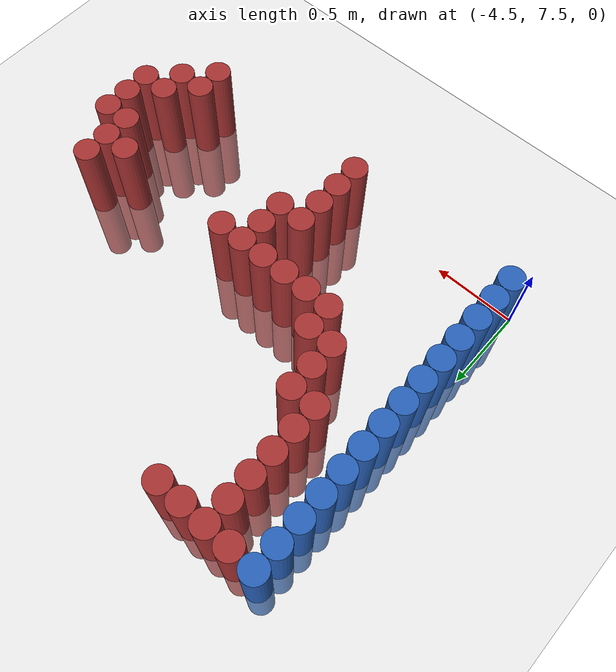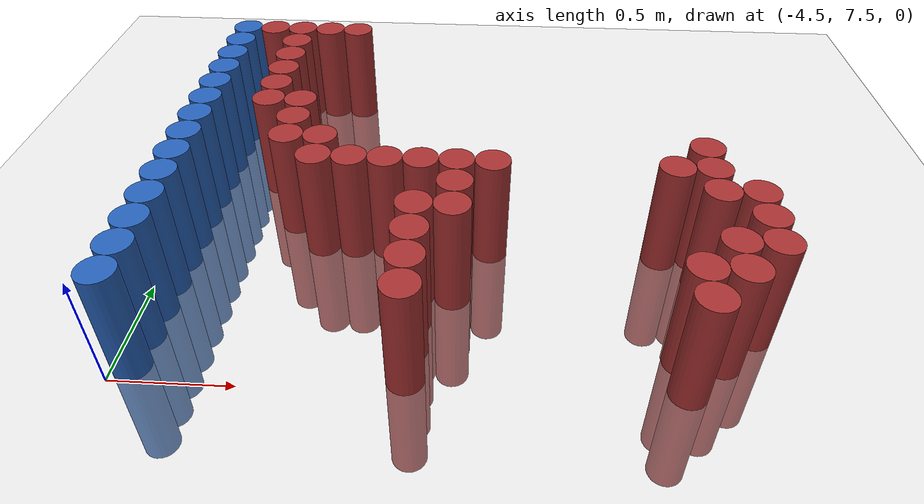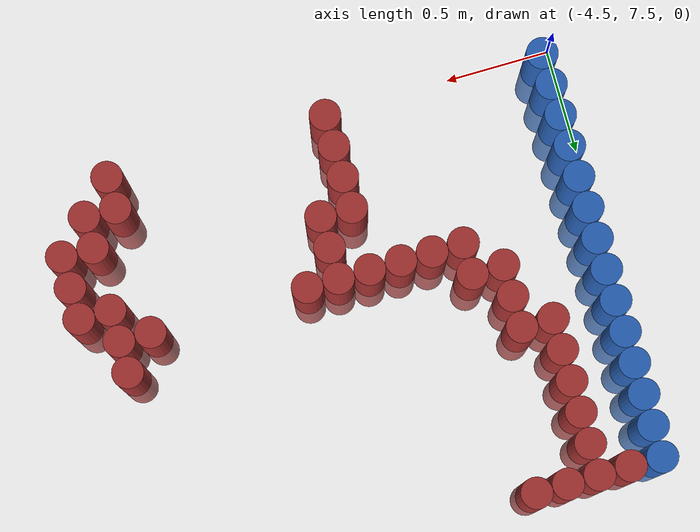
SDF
<sdf version="1.6">
 <world name="default">
  <model name="ground_plane">
   <static>1</static>
   <link name="link">
    <collision name="collision">
     <geometry><plane><normal>0 0 1</normal><size>100 100</size></plane></geometry>
     <surface><friction><ode><mu>100</mu><mu2>50</mu2></ode></friction></surface>
    </collision>
    <visual name="visual">
     <cast_shadows>0</cast_shadows>
     <geometry><plane><normal>0 0 1</normal><size>100 100</size></plane></geometry>
     <material>
      <script><uri>file://media/materials/scripts/gazebo.material</uri><name>Gazebo/Grey</name></script>
     </material>
    </visual>
   </link>
  </model>
  <model name="unit_cylinder_112">
   <static>1</static>
   <pose>-4.425000 7.575000 0.000000 0.000000 0.000000 0.000000</pose>
   <link name="link">
    <inertial>
     <mass>1</mass>
     <inertia><ixx>0.145833</ixx><ixy>0</ixy><ixz>0</ixz><iyy>0.145833</iyy><iyz>0</iyz><izz>0.125</izz></inertia>
    </inertial>
    <collision name="collision">
     <geometry><cylinder><radius>0.075000</radius><length>1</length></cylinder></geometry>
    </collision>
    <visual name="visual">
     <geometry><cylinder><radius>0.075000</radius><length>1</length></cylinder></geometry>
     <material>
      <ambient>0.152000 0.379000 0.720000 1</ambient>
      <diffuse>0.152000 0.379000 0.720000 1</diffuse>
     </material>
     <material>
      <script><name>Gazebo/Grey</name><uri>file://media/materials/scripts/gazebo.material</uri></script>
     </material>
    </visual>
   </link>
  </model>
  <model name="unit_cylinder_113">
   <static>1</static>
   <pose>-4.425000 7.725000 0.000000 0.000000 0.000000 0.000000</pose>
   <link name="link">
    <inertial>
     <mass>1</mass>
     <inertia><ixx>0.145833</ixx><ixy>0</ixy><ixz>0</ixz><iyy>0.145833</iyy><iyz>0</iyz><izz>0.125</izz></inertia>
    </inertial>
    <collision name="collision">
     <geometry><cylinder><radius>0.075000</radius><length>1</length></cylinder></geometry>
    </collision>
    <visual name="visual">
     <geometry><cylinder><radius>0.075000</radius><length>1</length></cylinder></geometry>
     <material>
      <ambient>0.152000 0.379000 0.720000 1</ambient>
      <diffuse>0.152000 0.379000 0.720000 1</diffuse>
     </material>
     <material>
      <script><name>Gazebo/Grey</name><uri>file://media/materials/scripts/gazebo.material</uri></script>
     </material>
    </visual>
   </link>
  </model>
  <model name="unit_cylinder_114">
   <static>1</static>
   <pose>-4.425000 7.875000 0.000000 0.000000 0.000000 0.000000</pose>
   <link name="link">
    <inertial>
     <mass>1</mass>
     <inertia><ixx>0.145833</ixx><ixy>0</ixy><ixz>0</ixz><iyy>0.145833</iyy><iyz>0</iyz><izz>0.125</izz></inertia>
    </inertial>
    <collision name="collision">
     <geometry><cylinder><radius>0.075000</radius><length>1</length></cylinder></geometry>
    </collision>
    <visual name="visual">
     <geometry><cylinder><radius>0.075000</radius><length>1</length></cylinder></geometry>
     <material>
      <ambient>0.152000 0.379000 0.720000 1</ambient>
      <diffuse>0.152000 0.379000 0.720000 1</diffuse>
     </material>
     <material>
      <script><name>Gazebo/Grey</name><uri>file://media/materials/scripts/gazebo.material</uri></script>
     </material>
    </visual>
   </link>
  </model>
  <model name="unit_cylinder_115">
   <static>1</static>
   <pose>-4.425000 8.025000 0.000000 0.000000 0.000000 0.000000</pose>
   <link name="link">
    <inertial>
     <mass>1</mass>
     <inertia><ixx>0.145833</ixx><ixy>0</ixy><ixz>0</ixz><iyy>0.145833</iyy><iyz>0</iyz><izz>0.125</izz></inertia>
    </inertial>
    <collision name="collision">
     <geometry><cylinder><radius>0.075000</radius><length>1</length></cylinder></geometry>
    </collision>
    <visual name="visual">
     <geometry><cylinder><radius>0.075000</radius><length>1</length></cylinder></geometry>
     <material>
      <ambient>0.152000 0.379000 0.720000 1</ambient>
      <diffuse>0.152000 0.379000 0.720000 1</diffuse>
     </material>
     <material>
      <script><name>Gazebo/Grey</name><uri>file://media/materials/scripts/gazebo.material</uri></script>
     </material>
    </visual>
   </link>
  </model>
  <model name="unit_cylinder_116">
   <static>1</static>
   <pose>-4.425000 8.175000 0.000000 0.000000 0.000000 0.000000</pose>
   <link name="link">
    <inertial>
     <mass>1</mass>
     <inertia><ixx>0.145833</ixx><ixy>0</ixy><ixz>0</ixz><iyy>0.145833</iyy><iyz>0</iyz><izz>0.125</izz></inertia>
    </inertial>
    <collision name="collision">
     <geometry><cylinder><radius>0.075000</radius><length>1</length></cylinder></geometry>
    </collision>
    <visual name="visual">
     <geometry><cylinder><radius>0.075000</radius><length>1</length></cylinder></geometry>
     <material>
      <ambient>0.152000 0.379000 0.720000 1</ambient>
      <diffuse>0.152000 0.379000 0.720000 1</diffuse>
     </material>
     <material>
      <script><name>Gazebo/Grey</name><uri>file://media/materials/scripts/gazebo.material</uri></script>
     </material>
    </visual>
   </link>
  </model>
  <model name="unit_cylinder_117">
   <static>1</static>
   <pose>-4.425000 8.325000 0.000000 0.000000 0.000000 0.000000</pose>
   <link name="link">
    <inertial>
     <mass>1</mass>
     <inertia><ixx>0.145833</ixx><ixy>0</ixy><ixz>0</ixz><iyy>0.145833</iyy><iyz>0</iyz><izz>0.125</izz></inertia>
    </inertial>
    <collision name="collision">
     <geometry><cylinder><radius>0.075000</radius><length>1</length></cylinder></geometry>
    </collision>
    <visual name="visual">
     <geometry><cylinder><radius>0.075000</radius><length>1</length></cylinder></geometry>
     <material>
      <ambient>0.152000 0.379000 0.720000 1</ambient>
      <diffuse>0.152000 0.379000 0.720000 1</diffuse>
     </material>
     <material>
      <script><name>Gazebo/Grey</name><uri>file://media/materials/scripts/gazebo.material</uri></script>
     </material>
    </visual>
   </link>
  </model>
  <model name="unit_cylinder_118">
   <static>1</static>
   <pose>-4.425000 8.475000 0.000000 0.000000 0.000000 0.000000</pose>
   <link name="link">
    <inertial>
     <mass>1</mass>
     <inertia><ixx>0.145833</ixx><ixy>0</ixy><ixz>0</ixz><iyy>0.145833</iyy><iyz>0</iyz><izz>0.125</izz></inertia>
    </inertial>
    <collision name="collision">
     <geometry><cylinder><radius>0.075000</radius><length>1</length></cylinder></geometry>
    </collision>
    <visual name="visual">
     <geometry><cylinder><radius>0.075000</radius><length>1</length></cylinder></geometry>
     <material>
      <ambient>0.152000 0.379000 0.720000 1</ambient>
      <diffuse>0.152000 0.379000 0.720000 1</diffuse>
     </material>
     <material>
      <script><name>Gazebo/Grey</name><uri>file://media/materials/scripts/gazebo.material</uri></script>
     </material>
    </visual>
   </link>
  </model>
  <model name="unit_cylinder_119">
   <static>1</static>
   <pose>-4.425000 8.625000 0.000000 0.000000 0.000000 0.000000</pose>
   <link name="link">
    <inertial>
     <mass>1</mass>
     <inertia><ixx>0.145833</ixx><ixy>0</ixy><ixz>0</ixz><iyy>0.145833</iyy><iyz>0</iyz><izz>0.125</izz></inertia>
    </inertial>
    <collision name="collision">
     <geometry><cylinder><radius>0.075000</radius><length>1</length></cylinder></geometry>
    </collision>
    <visual name="visual">
     <geometry><cylinder><radius>0.075000</radius><length>1</length></cylinder></geometry>
     <material>
      <ambient>0.152000 0.379000 0.720000 1</ambient>
      <diffuse>0.152000 0.379000 0.720000 1</diffuse>
     </material>
     <material>
      <script><name>Gazebo/Grey</name><uri>file://media/materials/scripts/gazebo.material</uri></script>
     </material>
    </visual>
   </link>
  </model>
  <model name="unit_cylinder_120">
   <static>1</static>
   <pose>-4.425000 8.775000 0.000000 0.000000 0.000000 0.000000</pose>
   <link name="link">
    <inertial>
     <mass>1</mass>
     <inertia><ixx>0.145833</ixx><ixy>0</ixy><ixz>0</ixz><iyy>0.145833</iyy><iyz>0</iyz><izz>0.125</izz></inertia>
    </inertial>
    <collision name="collision">
     <geometry><cylinder><radius>0.075000</radius><length>1</length></cylinder></geometry>
    </collision>
    <visual name="visual">
     <geometry><cylinder><radius>0.075000</radius><length>1</length></cylinder></geometry>
     <material>
      <ambient>0.152000 0.379000 0.720000 1</ambient>
      <diffuse>0.152000 0.379000 0.720000 1</diffuse>
     </material>
     <material>
      <script><name>Gazebo/Grey</name><uri>file://media/materials/scripts/gazebo.material</uri></script>
     </material>
    </visual>
   </link>
  </model>
  <model name="unit_cylinder_121">
   <static>1</static>
   <pose>-4.425000 8.925000 0.000000 0.000000 0.000000 0.000000</pose>
   <link name="link">
    <inertial>
     <mass>1</mass>
     <inertia><ixx>0.145833</ixx><ixy>0</ixy><ixz>0</ixz><iyy>0.145833</iyy><iyz>0</iyz><izz>0.125</izz></inertia>
    </inertial>
    <collision name="collision">
     <geometry><cylinder><radius>0.075000</radius><length>1</length></cylinder></geometry>
    </collision>
    <visual name="visual">
     <geometry><cylinder><radius>0.075000</radius><length>1</length></cylinder></geometry>
     <material>
      <ambient>0.152000 0.379000 0.720000 1</ambient>
      <diffuse>0.152000 0.379000 0.720000 1</diffuse>
     </material>
     <material>
      <script><name>Gazebo/Grey</name><uri>file://media/materials/scripts/gazebo.material</uri></script>
     </material>
    </visual>
   </link>
  </model>
  <model name="unit_cylinder_122">
   <static>1</static>
   <pose>-4.425000 9.075000 0.000000 0.000000 0.000000 0.000000</pose>
   <link name="link">
    <inertial>
     <mass>1</mass>
     <inertia><ixx>0.145833</ixx><ixy>0</ixy><ixz>0</ixz><iyy>0.145833</iyy><iyz>0</iyz><izz>0.125</izz></inertia>
    </inertial>
    <collision name="collision">
     <geometry><cylinder><radius>0.075000</radius><length>1</length></cylinder></geometry>
    </collision>
    <visual name="visual">
     <geometry><cylinder><radius>0.075000</radius><length>1</length></cylinder></geometry>
     <material>
      <ambient>0.152000 0.379000 0.720000 1</ambient>
      <diffuse>0.152000 0.379000 0.720000 1</diffuse>
     </material>
     <material>
      <script><name>Gazebo/Grey</name><uri>file://media/materials/scripts/gazebo.material</uri></script>
     </material>
    </visual>
   </link>
  </model>
  <model name="unit_cylinder_123">
   <static>1</static>
   <pose>-4.425000 9.225000 0.000000 0.000000 0.000000 0.000000</pose>
   <link name="link">
    <inertial>
     <mass>1</mass>
     <inertia><ixx>0.145833</ixx><ixy>0</ixy><ixz>0</ixz><iyy>0.145833</iyy><iyz>0</iyz><izz>0.125</izz></inertia>
    </inertial>
    <collision name="collision">
     <geometry><cylinder><radius>0.075000</radius><length>1</length></cylinder></geometry>
    </collision>
    <visual name="visual">
     <geometry><cylinder><radius>0.075000</radius><length>1</length></cylinder></geometry>
     <material>
      <ambient>0.152000 0.379000 0.720000 1</ambient>
      <diffuse>0.152000 0.379000 0.720000 1</diffuse>
     </material>
     <material>
      <script><name>Gazebo/Grey</name><uri>file://media/materials/scripts/gazebo.material</uri></script>
     </material>
    </visual>
   </link>
  </model>
  <model name="unit_cylinder_124">
   <static>1</static>
   <pose>-4.425000 9.375000 0.000000 0.000000 0.000000 0.000000</pose>
   <link name="link">
    <inertial>
     <mass>1</mass>
     <inertia><ixx>0.145833</ixx><ixy>0</ixy><ixz>0</ixz><iyy>0.145833</iyy><iyz>0</iyz><izz>0.125</izz></inertia>
    </inertial>
    <collision name="collision">
     <geometry><cylinder><radius>0.075000</radius><length>1</length></cylinder></geometry>
    </collision>
    <visual name="visual">
     <geometry><cylinder><radius>0.075000</radius><length>1</length></cylinder></geometry>
     <material>
      <ambient>0.152000 0.379000 0.720000 1</ambient>
      <diffuse>0.152000 0.379000 0.720000 1</diffuse>
     </material>
     <material>
      <script><name>Gazebo/Grey</name><uri>file://media/materials/scripts/gazebo.material</uri></script>
     </material>
    </visual>
   </link>
  </model>
  <model name="unit_cylinder_125">
   <static>1</static>
   <pose>-4.425000 9.525000 0.000000 0.000000 0.000000 0.000000</pose>
   <link name="link">
    <inertial>
     <mass>1</mass>
     <inertia><ixx>0.145833</ixx><ixy>0</ixy><ixz>0</ixz><iyy>0.145833</iyy><iyz>0</iyz><izz>0.125</izz></inertia>
    </inertial>
    <collision name="collision">
     <geometry><cylinder><radius>0.075000</radius><length>1</length></cylinder></geometry>
    </collision>
    <visual name="visual">
     <geometry><cylinder><radius>0.075000</radius><length>1</length></cylinder></geometry>
     <material>
      <ambient>0.152000 0.379000 0.720000 1</ambient>
      <diffuse>0.152000 0.379000 0.720000 1</diffuse>
     </material>
     <material>
      <script><name>Gazebo/Grey</name><uri>file://media/materials/scripts/gazebo.material</uri></script>
     </material>
    </visual>
   </link>
  </model>
  <model name="unit_cylinder_128">
   <static>1</static>
   <pose>-4.275000 9.525000 0.000000 0.000000 0.000000 0.000000</pose>
   <link name="link">
    <inertial>
     <mass>1</mass>
     <inertia><ixx>0.145833</ixx><ixy>0</ixy><ixz>0</ixz><iyy>0.145833</iyy><iyz>0</iyz><izz>0.125</izz></inertia>
    </inertial>
    <collision name="collision">
     <geometry><cylinder><radius>0.075000</radius><length>1</length></cylinder></geometry>
    </collision>
    <visual name="visual">
     <geometry><cylinder><radius>0.075000</radius><length>1</length></cylinder></geometry>
     <material>
      <ambient>0.648000 0.192000 0.192000 1</ambient>
      <diffuse>0.648000 0.192000 0.192000 1</diffuse>
     </material>
     <material>
      <script><name>Gazebo/Grey</name><uri>file://media/materials/scripts/gazebo.material</uri></script>
     </material>
    </visual>
   </link>
  </model>
  <model name="unit_cylinder_130">
   <static>1</static>
   <pose>-4.125000 8.775000 0.000000 0.000000 0.000000 0.000000</pose>
   <link name="link">
    <inertial>
     <mass>1</mass>
     <inertia><ixx>0.145833</ixx><ixy>0</ixy><ixz>0</ixz><iyy>0.145833</iyy><iyz>0</iyz><izz>0.125</izz></inertia>
    </inertial>
    <collision name="collision">
     <geometry><cylinder><radius>0.075000</radius><length>1</length></cylinder></geometry>
    </collision>
    <visual name="visual">
     <geometry><cylinder><radius>0.075000</radius><length>1</length></cylinder></geometry>
     <material>
      <ambient>0.648000 0.192000 0.192000 1</ambient>
      <diffuse>0.648000 0.192000 0.192000 1</diffuse>
     </material>
     <material>
      <script><name>Gazebo/Grey</name><uri>file://media/materials/scripts/gazebo.material</uri></script>
     </material>
    </visual>
   </link>
  </model>
  <model name="unit_cylinder_131">
   <static>1</static>
   <pose>-4.125000 8.925000 0.000000 0.000000 0.000000 0.000000</pose>
   <link name="link">
    <inertial>
     <mass>1</mass>
     <inertia><ixx>0.145833</ixx><ixy>0</ixy><ixz>0</ixz><iyy>0.145833</iyy><iyz>0</iyz><izz>0.125</izz></inertia>
    </inertial>
    <collision name="collision">
     <geometry><cylinder><radius>0.075000</radius><length>1</length></cylinder></geometry>
    </collision>
    <visual name="visual">
     <geometry><cylinder><radius>0.075000</radius><length>1</length></cylinder></geometry>
     <material>
      <ambient>0.648000 0.192000 0.192000 1</ambient>
      <diffuse>0.648000 0.192000 0.192000 1</diffuse>
     </material>
     <material>
      <script><name>Gazebo/Grey</name><uri>file://media/materials/scripts/gazebo.material</uri></script>
     </material>
    </visual>
   </link>
  </model>
  <model name="unit_cylinder_132">
   <static>1</static>
   <pose>-4.125000 9.075000 0.000000 0.000000 0.000000 0.000000</pose>
   <link name="link">
    <inertial>
     <mass>1</mass>
     <inertia><ixx>0.145833</ixx><ixy>0</ixy><ixz>0</ixz><iyy>0.145833</iyy><iyz>0</iyz><izz>0.125</izz></inertia>
    </inertial>
    <collision name="collision">
     <geometry><cylinder><radius>0.075000</radius><length>1</length></cylinder></geometry>
    </collision>
    <visual name="visual">
     <geometry><cylinder><radius>0.075000</radius><length>1</length></cylinder></geometry>
     <material>
      <ambient>0.648000 0.192000 0.192000 1</ambient>
      <diffuse>0.648000 0.192000 0.192000 1</diffuse>
     </material>
     <material>
      <script><name>Gazebo/Grey</name><uri>file://media/materials/scripts/gazebo.material</uri></script>
     </material>
    </visual>
   </link>
  </model>
  <model name="unit_cylinder_133">
   <static>1</static>
   <pose>-4.125000 9.225000 0.000000 0.000000 0.000000 0.000000</pose>
   <link name="link">
    <inertial>
     <mass>1</mass>
     <inertia><ixx>0.145833</ixx><ixy>0</ixy><ixz>0</ixz><iyy>0.145833</iyy><iyz>0</iyz><izz>0.125</izz></inertia>
    </inertial>
    <collision name="collision">
     <geometry><cylinder><radius>0.075000</radius><length>1</length></cylinder></geometry>
    </collision>
    <visual name="visual">
     <geometry><cylinder><radius>0.075000</radius><length>1</length></cylinder></geometry>
     <material>
      <ambient>0.648000 0.192000 0.192000 1</ambient>
      <diffuse>0.648000 0.192000 0.192000 1</diffuse>
     </material>
     <material>
      <script><name>Gazebo/Grey</name><uri>file://media/materials/scripts/gazebo.material</uri></script>
     </material>
    </visual>
   </link>
  </model>
  <model name="unit_cylinder_134">
   <static>1</static>
   <pose>-4.125000 9.375000 0.000000 0.000000 0.000000 0.000000</pose>
   <link name="link">
    <inertial>
     <mass>1</mass>
     <inertia><ixx>0.145833</ixx><ixy>0</ixy><ixz>0</ixz><iyy>0.145833</iyy><iyz>0</iyz><izz>0.125</izz></inertia>
    </inertial>
    <collision name="collision">
     <geometry><cylinder><radius>0.075000</radius><length>1</length></cylinder></geometry>
    </collision>
    <visual name="visual">
     <geometry><cylinder><radius>0.075000</radius><length>1</length></cylinder></geometry>
     <material>
      <ambient>0.648000 0.192000 0.192000 1</ambient>
      <diffuse>0.648000 0.192000 0.192000 1</diffuse>
     </material>
     <material>
      <script><name>Gazebo/Grey</name><uri>file://media/materials/scripts/gazebo.material</uri></script>
     </material>
    </visual>
   </link>
  </model>
  <model name="unit_cylinder_135">
   <static>1</static>
   <pose>-4.125000 9.525000 0.000000 0.000000 0.000000 0.000000</pose>
   <link name="link">
    <inertial>
     <mass>1</mass>
     <inertia><ixx>0.145833</ixx><ixy>0</ixy><ixz>0</ixz><iyy>0.145833</iyy><iyz>0</iyz><izz>0.125</izz></inertia>
    </inertial>
    <collision name="collision">
     <geometry><cylinder><radius>0.075000</radius><length>1</length></cylinder></geometry>
    </collision>
    <visual name="visual">
     <geometry><cylinder><radius>0.075000</radius><length>1</length></cylinder></geometry>
     <material>
      <ambient>0.648000 0.192000 0.192000 1</ambient>
      <diffuse>0.648000 0.192000 0.192000 1</diffuse>
     </material>
     <material>
      <script><name>Gazebo/Grey</name><uri>file://media/materials/scripts/gazebo.material</uri></script>
     </material>
    </visual>
   </link>
  </model>
  <model name="unit_cylinder_137">
   <static>1</static>
   <pose>-3.975000 8.475000 0.000000 0.000000 0.000000 0.000000</pose>
   <link name="link">
    <inertial>
     <mass>1</mass>
     <inertia><ixx>0.145833</ixx><ixy>0</ixy><ixz>0</ixz><iyy>0.145833</iyy><iyz>0</iyz><izz>0.125</izz></inertia>
    </inertial>
    <collision name="collision">
     <geometry><cylinder><radius>0.075000</radius><length>1</length></cylinder></geometry>
    </collision>
    <visual name="visual">
     <geometry><cylinder><radius>0.075000</radius><length>1</length></cylinder></geometry>
     <material>
      <ambient>0.648000 0.192000 0.192000 1</ambient>
      <diffuse>0.648000 0.192000 0.192000 1</diffuse>
     </material>
     <material>
      <script><name>Gazebo/Grey</name><uri>file://media/materials/scripts/gazebo.material</uri></script>
     </material>
    </visual>
   </link>
  </model>
  <model name="unit_cylinder_138">
   <static>1</static>
   <pose>-3.975000 8.625000 0.000000 0.000000 0.000000 0.000000</pose>
   <link name="link">
    <inertial>
     <mass>1</mass>
     <inertia><ixx>0.145833</ixx><ixy>0</ixy><ixz>0</ixz><iyy>0.145833</iyy><iyz>0</iyz><izz>0.125</izz></inertia>
    </inertial>
    <collision name="collision">
     <geometry><cylinder><radius>0.075000</radius><length>1</length></cylinder></geometry>
    </collision>
    <visual name="visual">
     <geometry><cylinder><radius>0.075000</radius><length>1</length></cylinder></geometry>
     <material>
      <ambient>0.648000 0.192000 0.192000 1</ambient>
      <diffuse>0.648000 0.192000 0.192000 1</diffuse>
     </material>
     <material>
      <script><name>Gazebo/Grey</name><uri>file://media/materials/scripts/gazebo.material</uri></script>
     </material>
    </visual>
   </link>
  </model>
  <model name="unit_cylinder_139">
   <static>1</static>
   <pose>-3.975000 8.775000 0.000000 0.000000 0.000000 0.000000</pose>
   <link name="link">
    <inertial>
     <mass>1</mass>
     <inertia><ixx>0.145833</ixx><ixy>0</ixy><ixz>0</ixz><iyy>0.145833</iyy><iyz>0</iyz><izz>0.125</izz></inertia>
    </inertial>
    <collision name="collision">
     <geometry><cylinder><radius>0.075000</radius><length>1</length></cylinder></geometry>
    </collision>
    <visual name="visual">
     <geometry><cylinder><radius>0.075000</radius><length>1</length></cylinder></geometry>
     <material>
      <ambient>0.648000 0.192000 0.192000 1</ambient>
      <diffuse>0.648000 0.192000 0.192000 1</diffuse>
     </material>
     <material>
      <script><name>Gazebo/Grey</name><uri>file://media/materials/scripts/gazebo.material</uri></script>
     </material>
    </visual>
   </link>
  </model>
  <model name="unit_cylinder_140">
   <static>1</static>
   <pose>-3.975000 9.525000 0.000000 0.000000 0.000000 0.000000</pose>
   <link name="link">
    <inertial>
     <mass>1</mass>
     <inertia><ixx>0.145833</ixx><ixy>0</ixy><ixz>0</ixz><iyy>0.145833</iyy><iyz>0</iyz><izz>0.125</izz></inertia>
    </inertial>
    <collision name="collision">
     <geometry><cylinder><radius>0.075000</radius><length>1</length></cylinder></geometry>
    </collision>
    <visual name="visual">
     <geometry><cylinder><radius>0.075000</radius><length>1</length></cylinder></geometry>
     <material>
      <ambient>0.648000 0.192000 0.192000 1</ambient>
      <diffuse>0.648000 0.192000 0.192000 1</diffuse>
     </material>
     <material>
      <script><name>Gazebo/Grey</name><uri>file://media/materials/scripts/gazebo.material</uri></script>
     </material>
    </visual>
   </link>
  </model>
  <model name="unit_cylinder_143">
   <static>1</static>
   <pose>-3.825000 8.325000 0.000000 0.000000 0.000000 0.000000</pose>
   <link name="link">
    <inertial>
     <mass>1</mass>
     <inertia><ixx>0.145833</ixx><ixy>0</ixy><ixz>0</ixz><iyy>0.145833</iyy><iyz>0</iyz><izz>0.125</izz></inertia>
    </inertial>
    <collision name="collision">
     <geometry><cylinder><radius>0.075000</radius><length>1</length></cylinder></geometry>
    </collision>
    <visual name="visual">
     <geometry><cylinder><radius>0.075000</radius><length>1</length></cylinder></geometry>
     <material>
      <ambient>0.648000 0.192000 0.192000 1</ambient>
      <diffuse>0.648000 0.192000 0.192000 1</diffuse>
     </material>
     <material>
      <script><name>Gazebo/Grey</name><uri>file://media/materials/scripts/gazebo.material</uri></script>
     </material>
    </visual>
   </link>
  </model>
  <model name="unit_cylinder_144">
   <static>1</static>
   <pose>-3.825000 8.475000 0.000000 0.000000 0.000000 0.000000</pose>
   <link name="link">
    <inertial>
     <mass>1</mass>
     <inertia><ixx>0.145833</ixx><ixy>0</ixy><ixz>0</ixz><iyy>0.145833</iyy><iyz>0</iyz><izz>0.125</izz></inertia>
    </inertial>
    <collision name="collision">
     <geometry><cylinder><radius>0.075000</radius><length>1</length></cylinder></geometry>
    </collision>
    <visual name="visual">
     <geometry><cylinder><radius>0.075000</radius><length>1</length></cylinder></geometry>
     <material>
      <ambient>0.648000 0.192000 0.192000 1</ambient>
      <diffuse>0.648000 0.192000 0.192000 1</diffuse>
     </material>
     <material>
      <script><name>Gazebo/Grey</name><uri>file://media/materials/scripts/gazebo.material</uri></script>
     </material>
    </visual>
   </link>
  </model>
  <model name="unit_cylinder_145">
   <static>1</static>
   <pose>-3.825000 9.525000 0.000000 0.000000 0.000000 0.000000</pose>
   <link name="link">
    <inertial>
     <mass>1</mass>
     <inertia><ixx>0.145833</ixx><ixy>0</ixy><ixz>0</ixz><iyy>0.145833</iyy><iyz>0</iyz><izz>0.125</izz></inertia>
    </inertial>
    <collision name="collision">
     <geometry><cylinder><radius>0.075000</radius><length>1</length></cylinder></geometry>
    </collision>
    <visual name="visual">
     <geometry><cylinder><radius>0.075000</radius><length>1</length></cylinder></geometry>
     <material>
      <ambient>0.648000 0.192000 0.192000 1</ambient>
      <diffuse>0.648000 0.192000 0.192000 1</diffuse>
     </material>
     <material>
      <script><name>Gazebo/Grey</name><uri>file://media/materials/scripts/gazebo.material</uri></script>
     </material>
    </visual>
   </link>
  </model>
  <model name="unit_cylinder_148">
   <static>1</static>
   <pose>-3.675000 8.325000 0.000000 0.000000 0.000000 0.000000</pose>
   <link name="link">
    <inertial>
     <mass>1</mass>
     <inertia><ixx>0.145833</ixx><ixy>0</ixy><ixz>0</ixz><iyy>0.145833</iyy><iyz>0</iyz><izz>0.125</izz></inertia>
    </inertial>
    <collision name="collision">
     <geometry><cylinder><radius>0.075000</radius><length>1</length></cylinder></geometry>
    </collision>
    <visual name="visual">
     <geometry><cylinder><radius>0.075000</radius><length>1</length></cylinder></geometry>
     <material>
      <ambient>0.648000 0.192000 0.192000 1</ambient>
      <diffuse>0.648000 0.192000 0.192000 1</diffuse>
     </material>
     <material>
      <script><name>Gazebo/Grey</name><uri>file://media/materials/scripts/gazebo.material</uri></script>
     </material>
    </visual>
   </link>
  </model>
  <model name="unit_cylinder_150">
   <static>1</static>
   <pose>-3.525000 8.325000 0.000000 0.000000 0.000000 0.000000</pose>
   <link name="link">
    <inertial>
     <mass>1</mass>
     <inertia><ixx>0.145833</ixx><ixy>0</ixy><ixz>0</ixz><iyy>0.145833</iyy><iyz>0</iyz><izz>0.125</izz></inertia>
    </inertial>
    <collision name="collision">
     <geometry><cylinder><radius>0.075000</radius><length>1</length></cylinder></geometry>
    </collision>
    <visual name="visual">
     <geometry><cylinder><radius>0.075000</radius><length>1</length></cylinder></geometry>
     <material>
      <ambient>0.648000 0.192000 0.192000 1</ambient>
      <diffuse>0.648000 0.192000 0.192000 1</diffuse>
     </material>
     <material>
      <script><name>Gazebo/Grey</name><uri>file://media/materials/scripts/gazebo.material</uri></script>
     </material>
    </visual>
   </link>
  </model>
  <model name="unit_cylinder_154">
   <static>1</static>
   <pose>-3.375000 7.575000 0.000000 0.000000 0.000000 0.000000</pose>
   <link name="link">
    <inertial>
     <mass>1</mass>
     <inertia><ixx>0.145833</ixx><ixy>0</ixy><ixz>0</ixz><iyy>0.145833</iyy><iyz>0</iyz><izz>0.125</izz></inertia>
    </inertial>
    <collision name="collision">
     <geometry><cylinder><radius>0.075000</radius><length>1</length></cylinder></geometry>
    </collision>
    <visual name="visual">
     <geometry><cylinder><radius>0.075000</radius><length>1</length></cylinder></geometry>
     <material>
      <ambient>0.648000 0.192000 0.192000 1</ambient>
      <diffuse>0.648000 0.192000 0.192000 1</diffuse>
     </material>
     <material>
      <script><name>Gazebo/Grey</name><uri>file://media/materials/scripts/gazebo.material</uri></script>
     </material>
    </visual>
   </link>
  </model>
  <model name="unit_cylinder_155">
   <static>1</static>
   <pose>-3.375000 7.725000 0.000000 0.000000 0.000000 0.000000</pose>
   <link name="link">
    <inertial>
     <mass>1</mass>
     <inertia><ixx>0.145833</ixx><ixy>0</ixy><ixz>0</ixz><iyy>0.145833</iyy><iyz>0</iyz><izz>0.125</izz></inertia>
    </inertial>
    <collision name="collision">
     <geometry><cylinder><radius>0.075000</radius><length>1</length></cylinder></geometry>
    </collision>
    <visual name="visual">
     <geometry><cylinder><radius>0.075000</radius><length>1</length></cylinder></geometry>
     <material>
      <ambient>0.648000 0.192000 0.192000 1</ambient>
      <diffuse>0.648000 0.192000 0.192000 1</diffuse>
     </material>
     <material>
      <script><name>Gazebo/Grey</name><uri>file://media/materials/scripts/gazebo.material</uri></script>
     </material>
    </visual>
   </link>
  </model>
  <model name="unit_cylinder_156">
   <static>1</static>
   <pose>-3.375000 7.875000 0.000000 0.000000 0.000000 0.000000</pose>
   <link name="link">
    <inertial>
     <mass>1</mass>
     <inertia><ixx>0.145833</ixx><ixy>0</ixy><ixz>0</ixz><iyy>0.145833</iyy><iyz>0</iyz><izz>0.125</izz></inertia>
    </inertial>
    <collision name="collision">
     <geometry><cylinder><radius>0.075000</radius><length>1</length></cylinder></geometry>
    </collision>
    <visual name="visual">
     <geometry><cylinder><radius>0.075000</radius><length>1</length></cylinder></geometry>
     <material>
      <ambient>0.648000 0.192000 0.192000 1</ambient>
      <diffuse>0.648000 0.192000 0.192000 1</diffuse>
     </material>
     <material>
      <script><name>Gazebo/Grey</name><uri>file://media/materials/scripts/gazebo.material</uri></script>
     </material>
    </visual>
   </link>
  </model>
  <model name="unit_cylinder_157">
   <static>1</static>
   <pose>-3.375000 8.025000 0.000000 0.000000 0.000000 0.000000</pose>
   <link name="link">
    <inertial>
     <mass>1</mass>
     <inertia><ixx>0.145833</ixx><ixy>0</ixy><ixz>0</ixz><iyy>0.145833</iyy><iyz>0</iyz><izz>0.125</izz></inertia>
    </inertial>
    <collision name="collision">
     <geometry><cylinder><radius>0.075000</radius><length>1</length></cylinder></geometry>
    </collision>
    <visual name="visual">
     <geometry><cylinder><radius>0.075000</radius><length>1</length></cylinder></geometry>
     <material>
      <ambient>0.648000 0.192000 0.192000 1</ambient>
      <diffuse>0.648000 0.192000 0.192000 1</diffuse>
     </material>
     <material>
      <script><name>Gazebo/Grey</name><uri>file://media/materials/scripts/gazebo.material</uri></script>
     </material>
    </visual>
   </link>
  </model>
  <model name="unit_cylinder_158">
   <static>1</static>
   <pose>-3.375000 8.325000 0.000000 0.000000 0.000000 0.000000</pose>
   <link name="link">
    <inertial>
     <mass>1</mass>
     <inertia><ixx>0.145833</ixx><ixy>0</ixy><ixz>0</ixz><iyy>0.145833</iyy><iyz>0</iyz><izz>0.125</izz></inertia>
    </inertial>
    <collision name="collision">
     <geometry><cylinder><radius>0.075000</radius><length>1</length></cylinder></geometry>
    </collision>
    <visual name="visual">
     <geometry><cylinder><radius>0.075000</radius><length>1</length></cylinder></geometry>
     <material>
      <ambient>0.648000 0.192000 0.192000 1</ambient>
      <diffuse>0.648000 0.192000 0.192000 1</diffuse>
     </material>
     <material>
      <script><name>Gazebo/Grey</name><uri>file://media/materials/scripts/gazebo.material</uri></script>
     </material>
    </visual>
   </link>
  </model>
  <model name="unit_cylinder_159">
   <static>1</static>
   <pose>-3.225000 8.025000 0.000000 0.000000 0.000000 0.000000</pose>
   <link name="link">
    <inertial>
     <mass>1</mass>
     <inertia><ixx>0.145833</ixx><ixy>0</ixy><ixz>0</ixz><iyy>0.145833</iyy><iyz>0</iyz><izz>0.125</izz></inertia>
    </inertial>
    <collision name="collision">
     <geometry><cylinder><radius>0.075000</radius><length>1</length></cylinder></geometry>
    </collision>
    <visual name="visual">
     <geometry><cylinder><radius>0.075000</radius><length>1</length></cylinder></geometry>
     <material>
      <ambient>0.648000 0.192000 0.192000 1</ambient>
      <diffuse>0.648000 0.192000 0.192000 1</diffuse>
     </material>
     <material>
      <script><name>Gazebo/Grey</name><uri>file://media/materials/scripts/gazebo.material</uri></script>
     </material>
    </visual>
   </link>
  </model>
  <model name="unit_cylinder_160">
   <static>1</static>
   <pose>-3.225000 8.175000 0.000000 0.000000 0.000000 0.000000</pose>
   <link name="link">
    <inertial>
     <mass>1</mass>
     <inertia><ixx>0.145833</ixx><ixy>0</ixy><ixz>0</ixz><iyy>0.145833</iyy><iyz>0</iyz><izz>0.125</izz></inertia>
    </inertial>
    <collision name="collision">
     <geometry><cylinder><radius>0.075000</radius><length>1</length></cylinder></geometry>
    </collision>
    <visual name="visual">
     <geometry><cylinder><radius>0.075000</radius><length>1</length></cylinder></geometry>
     <material>
      <ambient>0.648000 0.192000 0.192000 1</ambient>
      <diffuse>0.648000 0.192000 0.192000 1</diffuse>
     </material>
     <material>
      <script><name>Gazebo/Grey</name><uri>file://media/materials/scripts/gazebo.material</uri></script>
     </material>
    </visual>
   </link>
  </model>
  <model name="unit_cylinder_161">
   <static>1</static>
   <pose>-3.225000 8.325000 0.000000 0.000000 0.000000 0.000000</pose>
   <link name="link">
    <inertial>
     <mass>1</mass>
     <inertia><ixx>0.145833</ixx><ixy>0</ixy><ixz>0</ixz><iyy>0.145833</iyy><iyz>0</iyz><izz>0.125</izz></inertia>
    </inertial>
    <collision name="collision">
     <geometry><cylinder><radius>0.075000</radius><length>1</length></cylinder></geometry>
    </collision>
    <visual name="visual">
     <geometry><cylinder><radius>0.075000</radius><length>1</length></cylinder></geometry>
     <material>
      <ambient>0.648000 0.192000 0.192000 1</ambient>
      <diffuse>0.648000 0.192000 0.192000 1</diffuse>
     </material>
     <material>
      <script><name>Gazebo/Grey</name><uri>file://media/materials/scripts/gazebo.material</uri></script>
     </material>
    </visual>
   </link>
  </model>
  <model name="unit_cylinder_162">
   <static>1</static>
   <pose>-3.075000 8.325000 0.000000 0.000000 0.000000 0.000000</pose>
   <link name="link">
    <inertial>
     <mass>1</mass>
     <inertia><ixx>0.145833</ixx><ixy>0</ixy><ixz>0</ixz><iyy>0.145833</iyy><iyz>0</iyz><izz>0.125</izz></inertia>
    </inertial>
    <collision name="collision">
     <geometry><cylinder><radius>0.075000</radius><length>1</length></cylinder></geometry>
    </collision>
    <visual name="visual">
     <geometry><cylinder><radius>0.075000</radius><length>1</length></cylinder></geometry>
     <material>
      <ambient>0.648000 0.192000 0.192000 1</ambient>
      <diffuse>0.648000 0.192000 0.192000 1</diffuse>
     </material>
     <material>
      <script><name>Gazebo/Grey</name><uri>file://media/materials/scripts/gazebo.material</uri></script>
     </material>
    </visual>
   </link>
  </model>
  <model name="unit_cylinder_189">
   <static>1</static>
   <pose>-2.325000 7.575000 0.000000 0.000000 0.000000 0.000000</pose>
   <link name="link">
    <inertial>
     <mass>1</mass>
     <inertia><ixx>0.145833</ixx><ixy>0</ixy><ixz>0</ixz><iyy>0.145833</iyy><iyz>0</iyz><izz>0.125</izz></inertia>
    </inertial>
    <collision name="collision">
     <geometry><cylinder><radius>0.075000</radius><length>1</length></cylinder></geometry>
    </collision>
    <visual name="visual">
     <geometry><cylinder><radius>0.075000</radius><length>1</length></cylinder></geometry>
     <material>
      <ambient>0.648000 0.192000 0.192000 1</ambient>
      <diffuse>0.648000 0.192000 0.192000 1</diffuse>
     </material>
     <material>
      <script><name>Gazebo/Grey</name><uri>file://media/materials/scripts/gazebo.material</uri></script>
     </material>
    </visual>
   </link>
  </model>
  <model name="unit_cylinder_190">
   <static>1</static>
   <pose>-2.325000 7.725000 0.000000 0.000000 0.000000 0.000000</pose>
   <link name="link">
    <inertial>
     <mass>1</mass>
     <inertia><ixx>0.145833</ixx><ixy>0</ixy><ixz>0</ixz><iyy>0.145833</iyy><iyz>0</iyz><izz>0.125</izz></inertia>
    </inertial>
    <collision name="collision">
     <geometry><cylinder><radius>0.075000</radius><length>1</length></cylinder></geometry>
    </collision>
    <visual name="visual">
     <geometry><cylinder><radius>0.075000</radius><length>1</length></cylinder></geometry>
     <material>
      <ambient>0.648000 0.192000 0.192000 1</ambient>
      <diffuse>0.648000 0.192000 0.192000 1</diffuse>
     </material>
     <material>
      <script><name>Gazebo/Grey</name><uri>file://media/materials/scripts/gazebo.material</uri></script>
     </material>
    </visual>
   </link>
  </model>
  <model name="unit_cylinder_191">
   <static>1</static>
   <pose>-2.325000 8.325000 0.000000 0.000000 0.000000 0.000000</pose>
   <link name="link">
    <inertial>
     <mass>1</mass>
     <inertia><ixx>0.145833</ixx><ixy>0</ixy><ixz>0</ixz><iyy>0.145833</iyy><iyz>0</iyz><izz>0.125</izz></inertia>
    </inertial>
    <collision name="collision">
     <geometry><cylinder><radius>0.075000</radius><length>1</length></cylinder></geometry>
    </collision>
    <visual name="visual">
     <geometry><cylinder><radius>0.075000</radius><length>1</length></cylinder></geometry>
     <material>
      <ambient>0.648000 0.192000 0.192000 1</ambient>
      <diffuse>0.648000 0.192000 0.192000 1</diffuse>
     </material>
     <material>
      <script><name>Gazebo/Grey</name><uri>file://media/materials/scripts/gazebo.material</uri></script>
     </material>
    </visual>
   </link>
  </model>
  <model name="unit_cylinder_198">
   <static>1</static>
   <pose>-2.175000 7.725000 0.000000 0.000000 0.000000 0.000000</pose>
   <link name="link">
    <inertial>
     <mass>1</mass>
     <inertia><ixx>0.145833</ixx><ixy>0</ixy><ixz>0</ixz><iyy>0.145833</iyy><iyz>0</iyz><izz>0.125</izz></inertia>
    </inertial>
    <collision name="collision">
     <geometry><cylinder><radius>0.075000</radius><length>1</length></cylinder></geometry>
    </collision>
    <visual name="visual">
     <geometry><cylinder><radius>0.075000</radius><length>1</length></cylinder></geometry>
     <material>
      <ambient>0.648000 0.192000 0.192000 1</ambient>
      <diffuse>0.648000 0.192000 0.192000 1</diffuse>
     </material>
     <material>
      <script><name>Gazebo/Grey</name><uri>file://media/materials/scripts/gazebo.material</uri></script>
     </material>
    </visual>
   </link>
  </model>
  <model name="unit_cylinder_199">
   <static>1</static>
   <pose>-2.175000 7.875000 0.000000 0.000000 0.000000 0.000000</pose>
   <link name="link">
    <inertial>
     <mass>1</mass>
     <inertia><ixx>0.145833</ixx><ixy>0</ixy><ixz>0</ixz><iyy>0.145833</iyy><iyz>0</iyz><izz>0.125</izz></inertia>
    </inertial>
    <collision name="collision">
     <geometry><cylinder><radius>0.075000</radius><length>1</length></cylinder></geometry>
    </collision>
    <visual name="visual">
     <geometry><cylinder><radius>0.075000</radius><length>1</length></cylinder></geometry>
     <material>
      <ambient>0.648000 0.192000 0.192000 1</ambient>
      <diffuse>0.648000 0.192000 0.192000 1</diffuse>
     </material>
     <material>
      <script><name>Gazebo/Grey</name><uri>file://media/materials/scripts/gazebo.material</uri></script>
     </material>
    </visual>
   </link>
  </model>
  <model name="unit_cylinder_200">
   <static>1</static>
   <pose>-2.175000 8.175000 0.000000 0.000000 0.000000 0.000000</pose>
   <link name="link">
    <inertial>
     <mass>1</mass>
     <inertia><ixx>0.145833</ixx><ixy>0</ixy><ixz>0</ixz><iyy>0.145833</iyy><iyz>0</iyz><izz>0.125</izz></inertia>
    </inertial>
    <collision name="collision">
     <geometry><cylinder><radius>0.075000</radius><length>1</length></cylinder></geometry>
    </collision>
    <visual name="visual">
     <geometry><cylinder><radius>0.075000</radius><length>1</length></cylinder></geometry>
     <material>
      <ambient>0.648000 0.192000 0.192000 1</ambient>
      <diffuse>0.648000 0.192000 0.192000 1</diffuse>
     </material>
     <material>
      <script><name>Gazebo/Grey</name><uri>file://media/materials/scripts/gazebo.material</uri></script>
     </material>
    </visual>
   </link>
  </model>
  <model name="unit_cylinder_201">
   <static>1</static>
   <pose>-2.175000 8.325000 0.000000 0.000000 0.000000 0.000000</pose>
   <link name="link">
    <inertial>
     <mass>1</mass>
     <inertia><ixx>0.145833</ixx><ixy>0</ixy><ixz>0</ixz><iyy>0.145833</iyy><iyz>0</iyz><izz>0.125</izz></inertia>
    </inertial>
    <collision name="collision">
     <geometry><cylinder><radius>0.075000</radius><length>1</length></cylinder></geometry>
    </collision>
    <visual name="visual">
     <geometry><cylinder><radius>0.075000</radius><length>1</length></cylinder></geometry>
     <material>
      <ambient>0.648000 0.192000 0.192000 1</ambient>
      <diffuse>0.648000 0.192000 0.192000 1</diffuse>
     </material>
     <material>
      <script><name>Gazebo/Grey</name><uri>file://media/materials/scripts/gazebo.material</uri></script>
     </material>
    </visual>
   </link>
  </model>
  <model name="unit_cylinder_202">
   <static>1</static>
   <pose>-2.175000 8.475000 0.000000 0.000000 0.000000 0.000000</pose>
   <link name="link">
    <inertial>
     <mass>1</mass>
     <inertia><ixx>0.145833</ixx><ixy>0</ixy><ixz>0</ixz><iyy>0.145833</iyy><iyz>0</iyz><izz>0.125</izz></inertia>
    </inertial>
    <collision name="collision">
     <geometry><cylinder><radius>0.075000</radius><length>1</length></cylinder></geometry>
    </collision>
    <visual name="visual">
     <geometry><cylinder><radius>0.075000</radius><length>1</length></cylinder></geometry>
     <material>
      <ambient>0.648000 0.192000 0.192000 1</ambient>
      <diffuse>0.648000 0.192000 0.192000 1</diffuse>
     </material>
     <material>
      <script><name>Gazebo/Grey</name><uri>file://media/materials/scripts/gazebo.material</uri></script>
     </material>
    </visual>
   </link>
  </model>
  <model name="unit_cylinder_211">
   <static>1</static>
   <pose>-2.025000 7.875000 0.000000 0.000000 0.000000 0.000000</pose>
   <link name="link">
    <inertial>
     <mass>1</mass>
     <inertia><ixx>0.145833</ixx><ixy>0</ixy><ixz>0</ixz><iyy>0.145833</iyy><iyz>0</iyz><izz>0.125</izz></inertia>
    </inertial>
    <collision name="collision">
     <geometry><cylinder><radius>0.075000</radius><length>1</length></cylinder></geometry>
    </collision>
    <visual name="visual">
     <geometry><cylinder><radius>0.075000</radius><length>1</length></cylinder></geometry>
     <material>
      <ambient>0.648000 0.192000 0.192000 1</ambient>
      <diffuse>0.648000 0.192000 0.192000 1</diffuse>
     </material>
     <material>
      <script><name>Gazebo/Grey</name><uri>file://media/materials/scripts/gazebo.material</uri></script>
     </material>
    </visual>
   </link>
  </model>
  <model name="unit_cylinder_212">
   <static>1</static>
   <pose>-2.025000 8.025000 0.000000 0.000000 0.000000 0.000000</pose>
   <link name="link">
    <inertial>
     <mass>1</mass>
     <inertia><ixx>0.145833</ixx><ixy>0</ixy><ixz>0</ixz><iyy>0.145833</iyy><iyz>0</iyz><izz>0.125</izz></inertia>
    </inertial>
    <collision name="collision">
     <geometry><cylinder><radius>0.075000</radius><length>1</length></cylinder></geometry>
    </collision>
    <visual name="visual">
     <geometry><cylinder><radius>0.075000</radius><length>1</length></cylinder></geometry>
     <material>
      <ambient>0.648000 0.192000 0.192000 1</ambient>
      <diffuse>0.648000 0.192000 0.192000 1</diffuse>
     </material>
     <material>
      <script><name>Gazebo/Grey</name><uri>file://media/materials/scripts/gazebo.material</uri></script>
     </material>
    </visual>
   </link>
  </model>
  <model name="unit_cylinder_213">
   <static>1</static>
   <pose>-2.025000 8.175000 0.000000 0.000000 0.000000 0.000000</pose>
   <link name="link">
    <inertial>
     <mass>1</mass>
     <inertia><ixx>0.145833</ixx><ixy>0</ixy><ixz>0</ixz><iyy>0.145833</iyy><iyz>0</iyz><izz>0.125</izz></inertia>
    </inertial>
    <collision name="collision">
     <geometry><cylinder><radius>0.075000</radius><length>1</length></cylinder></geometry>
    </collision>
    <visual name="visual">
     <geometry><cylinder><radius>0.075000</radius><length>1</length></cylinder></geometry>
     <material>
      <ambient>0.648000 0.192000 0.192000 1</ambient>
      <diffuse>0.648000 0.192000 0.192000 1</diffuse>
     </material>
     <material>
      <script><name>Gazebo/Grey</name><uri>file://media/materials/scripts/gazebo.material</uri></script>
     </material>
    </visual>
   </link>
  </model>
 </world>
</sdf>
